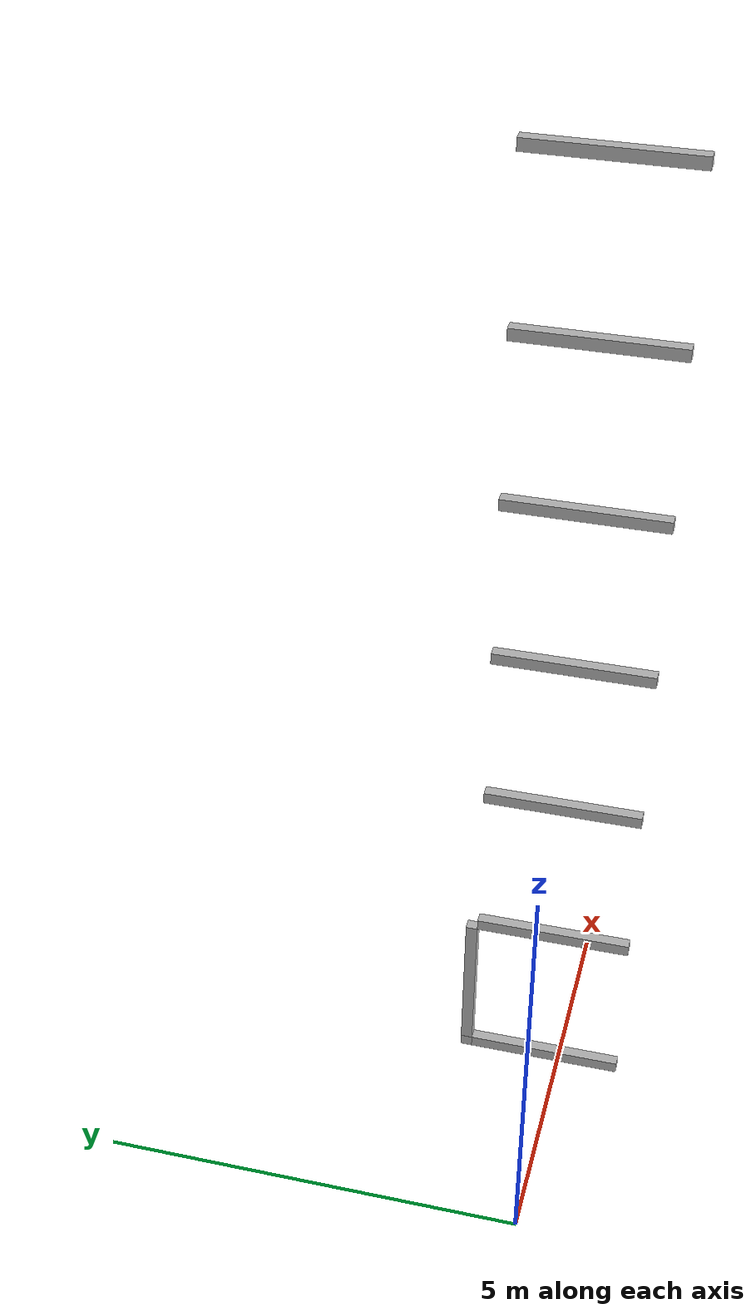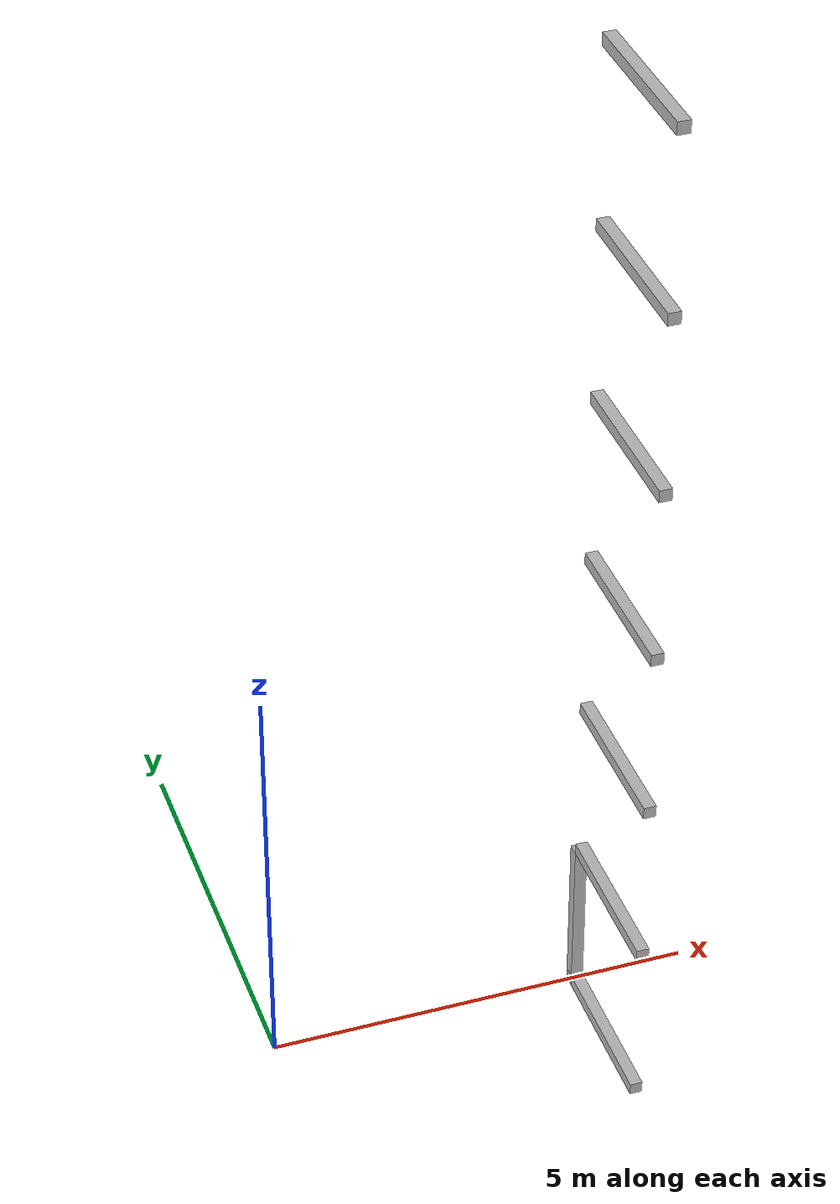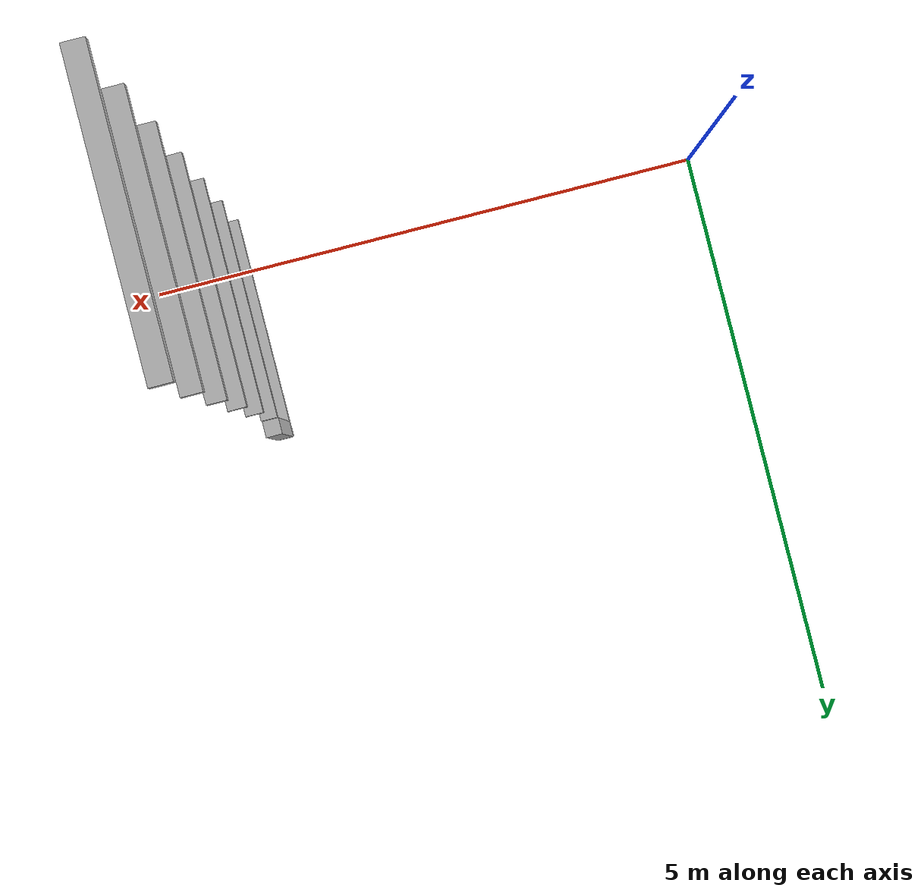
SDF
<sdf version="1.7">
 <world name="default">
  <model name="orthogonal_747_2.000.15_TS">
   <static>1</static>
   <link name="y_link_0_2_5">
    <inertial>
     <mass>1</mass>
     <inertia>
      <ixx>0.166667</ixx>
      <ixy>0</ixy>
      <ixz>0</ixz>
      <iyy>0.166667</iyy>
      <iyz>0</iyz>
      <izz>0.166667</izz>
     </inertia>
    </inertial>
    <pose>10.75 5.375 1.075 0 -0 0</pose>
    <visual name="visual_0">
     <laser_retro>435</laser_retro>
     <geometry><box><size>0.15 1e-06 0.15</size></box></geometry>
     <material>
      <script><name>Gazebo/Grey</name><uri>file://media/materials/scripts/gazebo.material</uri></script>
      <shader type="pixel"><normal_map>__default__</normal_map></shader>
      <ambient>0.678 0.498 0.659 1</ambient>
      <diffuse>0.7 0.7 0.7 1</diffuse>
      <specular>0.01 0.01 0.01 1</specular>
      <emissive>0 0 0 1</emissive>
     </material>
     <pose>0 -1 0 0 -0 0</pose>
     <transparency>1</transparency>
    </visual>
    <visual name="visual_1">
     <laser_retro>436</laser_retro>
     <geometry><box><size>0.15 1e-06 0.15</size></box></geometry>
     <material>
      <script><name>Gazebo/Grey</name><uri>file://media/materials/scripts/gazebo.material</uri></script>
      <shader type="pixel"><normal_map>__default__</normal_map></shader>
      <ambient>0.447 0.624 0.812 1</ambient>
      <diffuse>0.7 0.7 0.7 1</diffuse>
      <specular>0.01 0.01 0.01 1</specular>
      <emissive>0 0 0 1</emissive>
     </material>
     <pose>0 1 0 0 -0 0</pose>
     <transparency>1</transparency>
    </visual>
    <visual name="visual_2">
     <laser_retro>437</laser_retro>
     <geometry><box><size>0.15 2 1e-06</size></box></geometry>
     <material>
      <script><name>Gazebo/Grey</name><uri>file://media/materials/scripts/gazebo.material</uri></script>
      <shader type="pixel"><normal_map>__default__</normal_map></shader>
      <ambient>0.988 0.686 0.243 1</ambient>
      <diffuse>0.7 0.7 0.7 1</diffuse>
      <specular>0.01 0.01 0.01 1</specular>
      <emissive>0 0 0 1</emissive>
     </material>
     <pose>0 0 -0.075 0 -0 0</pose>
     <transparency>1</transparency>
    </visual>
    <visual name="visual_3">
     <laser_retro>438</laser_retro>
     <geometry><box><size>1e-06 2 0.15</size></box></geometry>
     <material>
      <script><name>Gazebo/Grey</name><uri>file://media/materials/scripts/gazebo.material</uri></script>
      <shader type="pixel"><normal_map>__default__</normal_map></shader>
      <ambient>0.988 0.914 0.31 1</ambient>
      <diffuse>0.7 0.7 0.7 1</diffuse>
      <specular>0.01 0.01 0.01 1</specular>
      <emissive>0 0 0 1</emissive>
     </material>
     <pose>0.075 0 0 0 -0 0</pose>
     <transparency>1</transparency>
    </visual>
    <visual name="visual_4">
     <laser_retro>439</laser_retro>
     <geometry><box><size>0.15 2 1e-06</size></box></geometry>
     <material>
      <script><name>Gazebo/Grey</name><uri>file://media/materials/scripts/gazebo.material</uri></script>
      <shader type="pixel"><normal_map>__default__</normal_map></shader>
      <ambient>0.937 0.161 0.161 1</ambient>
      <diffuse>0.7 0.7 0.7 1</diffuse>
      <specular>0.01 0.01 0.01 1</specular>
      <emissive>0 0 0 1</emissive>
     </material>
     <pose>0 0 0.075 0 -0 0</pose>
     <transparency>1</transparency>
    </visual>
    <visual name="visual_5">
     <laser_retro>440</laser_retro>
     <geometry><box><size>1e-06 2 0.15</size></box></geometry>
     <material>
      <script><name>Gazebo/Grey</name><uri>file://media/materials/scripts/gazebo.material</uri></script>
      <shader type="pixel"><normal_map>__default__</normal_map></shader>
      <ambient>0.541 0.886 0.204 1</ambient>
      <diffuse>0.7 0.7 0.7 1</diffuse>
      <specular>0.01 0.01 0.01 1</specular>
      <emissive>0 0 0 1</emissive>
     </material>
     <pose>-0.075 0 0 0 -0 0</pose>
     <transparency>1</transparency>
    </visual>
    <visual name="visual_texture">
     <geometry><box><size>0.149985 1.9998 0.149985</size></box></geometry>
     <material>
      <script>
       <uri>model://BASE_MODELS/simple_block_v2_textured/materials/scripts</uri>
       <uri>model://BASE_MODELS/simple_block_v2_textured/materials/textures</uri>
       <name>metal</name>
      </script>
     </material>
     <laser_retro>441</laser_retro>
    </visual>
    <collision name="collision">
     <geometry><box><size>0.15 2 0.15</size></box></geometry>
     <surface>
      <friction>
       <ode><mu>1</mu><mu2>1</mu2><fdir1>0 0 0</fdir1><slip1>0</slip1><slip2>0</slip2></ode>
       <torsional>
        <coefficient>1</coefficient>
        <patch_radius>0</patch_radius>
        <surface_radius>0</surface_radius>
        <use_patch_radius>1</use_patch_radius>
        <ode><slip>0</slip></ode>
       </torsional>
      </friction>
      <bounce><restitution_coefficient>0</restitution_coefficient><threshold>1e+06</threshold></bounce>
      <contact>
       <collide_without_contact>0</collide_without_contact>
       <collide_without_contact_bitmask>1</collide_without_contact_bitmask>
       <collide_bitmask>1</collide_bitmask>
       <ode>
        <soft_cfm>0</soft_cfm>
        <soft_erp>0.2</soft_erp>
        <kp>1e+13</kp>
        <kd>1</kd>
        <max_vel>0.01</max_vel>
        <min_depth>0</min_depth>
       </ode>
       <bullet>
        <split_impulse>1</split_impulse>
        <split_impulse_penetration_threshold>-0.01</split_impulse_penetration_threshold>
        <soft_cfm>0</soft_cfm>
        <soft_erp>0.2</soft_erp>
        <kp>1e+13</kp>
        <kd>1</kd>
       </bullet>
      </contact>
     </surface>
    </collision>
   </link>
   <link name="u_link_0_3_5">
    <inertial>
     <mass>1</mass>
     <inertia>
      <ixx>0.166667</ixx>
      <ixy>0</ixy>
      <ixz>0</ixz>
      <iyy>0.166667</iyy>
      <iyz>0</iyz>
      <izz>0.166667</izz>
     </inertia>
    </inertial>
    <pose>10.75 6.45 1.075 0 -0 0</pose>
    <visual name="visual_0">
     <laser_retro>603</laser_retro>
     <geometry><box><size>0.15 1e-06 0.15</size></box></geometry>
     <material>
      <script><name>Gazebo/Grey</name><uri>file://media/materials/scripts/gazebo.material</uri></script>
      <shader type="pixel"><normal_map>__default__</normal_map></shader>
      <ambient>0.678 0.498 0.659 1</ambient>
      <diffuse>0.7 0.7 0.7 1</diffuse>
      <specular>0.01 0.01 0.01 1</specular>
      <emissive>0 0 0 1</emissive>
     </material>
     <pose>0 -0.075 0 0 -0 0</pose>
     <transparency>1</transparency>
    </visual>
    <visual name="visual_1">
     <laser_retro>604</laser_retro>
     <geometry><box><size>0.15 1e-06 0.15</size></box></geometry>
     <material>
      <script><name>Gazebo/Grey</name><uri>file://media/materials/scripts/gazebo.material</uri></script>
      <shader type="pixel"><normal_map>__default__</normal_map></shader>
      <ambient>0.447 0.624 0.812 1</ambient>
      <diffuse>0.7 0.7 0.7 1</diffuse>
      <specular>0.01 0.01 0.01 1</specular>
      <emissive>0 0 0 1</emissive>
     </material>
     <pose>0 0.075 0 0 -0 0</pose>
     <transparency>1</transparency>
    </visual>
    <visual name="visual_2">
     <laser_retro>605</laser_retro>
     <geometry><box><size>0.15 0.15 1e-06</size></box></geometry>
     <material>
      <script><name>Gazebo/Grey</name><uri>file://media/materials/scripts/gazebo.material</uri></script>
      <shader type="pixel"><normal_map>__default__</normal_map></shader>
      <ambient>0.988 0.686 0.243 1</ambient>
      <diffuse>0.7 0.7 0.7 1</diffuse>
      <specular>0.01 0.01 0.01 1</specular>
      <emissive>0 0 0 1</emissive>
     </material>
     <pose>0 0 -0.075 0 -0 0</pose>
     <transparency>1</transparency>
    </visual>
    <visual name="visual_3">
     <laser_retro>606</laser_retro>
     <geometry><box><size>1e-06 0.15 0.15</size></box></geometry>
     <material>
      <script><name>Gazebo/Grey</name><uri>file://media/materials/scripts/gazebo.material</uri></script>
      <shader type="pixel"><normal_map>__default__</normal_map></shader>
      <ambient>0.988 0.914 0.31 1</ambient>
      <diffuse>0.7 0.7 0.7 1</diffuse>
      <specular>0.01 0.01 0.01 1</specular>
      <emissive>0 0 0 1</emissive>
     </material>
     <pose>0.075 0 0 0 -0 0</pose>
     <transparency>1</transparency>
    </visual>
    <visual name="visual_4">
     <laser_retro>607</laser_retro>
     <geometry><box><size>0.15 0.15 1e-06</size></box></geometry>
     <material>
      <script><name>Gazebo/Grey</name><uri>file://media/materials/scripts/gazebo.material</uri></script>
      <shader type="pixel"><normal_map>__default__</normal_map></shader>
      <ambient>0.937 0.161 0.161 1</ambient>
      <diffuse>0.7 0.7 0.7 1</diffuse>
      <specular>0.01 0.01 0.01 1</specular>
      <emissive>0 0 0 1</emissive>
     </material>
     <pose>0 0 0.075 0 -0 0</pose>
     <transparency>1</transparency>
    </visual>
    <visual name="visual_5">
     <laser_retro>608</laser_retro>
     <geometry><box><size>1e-06 0.15 0.15</size></box></geometry>
     <material>
      <script><name>Gazebo/Grey</name><uri>file://media/materials/scripts/gazebo.material</uri></script>
      <shader type="pixel"><normal_map>__default__</normal_map></shader>
      <ambient>0.541 0.886 0.204 1</ambient>
      <diffuse>0.7 0.7 0.7 1</diffuse>
      <specular>0.01 0.01 0.01 1</specular>
      <emissive>0 0 0 1</emissive>
     </material>
     <pose>-0.075 0 0 0 -0 0</pose>
     <transparency>1</transparency>
    </visual>
    <visual name="visual_texture">
     <geometry><box><size>0.149985 0.149985 0.149985</size></box></geometry>
     <material>
      <script>
       <uri>model://BASE_MODELS/simple_block_v2_textured/materials/scripts</uri>
       <uri>model://BASE_MODELS/simple_block_v2_textured/materials/textures</uri>
       <name>metal</name>
      </script>
     </material>
     <laser_retro>609</laser_retro>
    </visual>
    <collision name="collision">
     <geometry><box><size>0.15 0.15 0.15</size></box></geometry>
     <surface>
      <friction>
       <ode><mu>1</mu><mu2>1</mu2><fdir1>0 0 0</fdir1><slip1>0</slip1><slip2>0</slip2></ode>
       <torsional>
        <coefficient>1</coefficient>
        <patch_radius>0</patch_radius>
        <surface_radius>0</surface_radius>
        <use_patch_radius>1</use_patch_radius>
        <ode><slip>0</slip></ode>
       </torsional>
      </friction>
      <bounce><restitution_coefficient>0</restitution_coefficient><threshold>1e+06</threshold></bounce>
      <contact>
       <collide_without_contact>0</collide_without_contact>
       <collide_without_contact_bitmask>1</collide_without_contact_bitmask>
       <collide_bitmask>1</collide_bitmask>
       <ode>
        <soft_cfm>0</soft_cfm>
        <soft_erp>0.2</soft_erp>
        <kp>1e+13</kp>
        <kd>1</kd>
        <max_vel>0.01</max_vel>
        <min_depth>0</min_depth>
       </ode>
       <bullet>
        <split_impulse>1</split_impulse>
        <split_impulse_penetration_threshold>-0.01</split_impulse_penetration_threshold>
        <soft_cfm>0</soft_cfm>
        <soft_erp>0.2</soft_erp>
        <kp>1e+13</kp>
        <kd>1</kd>
       </bullet>
      </contact>
     </surface>
    </collision>
   </link>
   <link name="y_link_1_2_5">
    <inertial>
     <mass>1</mass>
     <inertia>
      <ixx>0.166667</ixx>
      <ixy>0</ixy>
      <ixz>0</ixz>
      <iyy>0.166667</iyy>
      <iyz>0</iyz>
      <izz>0.166667</izz>
     </inertia>
    </inertial>
    <pose>10.75 5.375 3.225 0 -0 0</pose>
    <visual name="visual_0">
     <laser_retro>1261</laser_retro>
     <geometry><box><size>0.15 1e-06 0.15</size></box></geometry>
     <material>
      <script><name>Gazebo/Grey</name><uri>file://media/materials/scripts/gazebo.material</uri></script>
      <shader type="pixel"><normal_map>__default__</normal_map></shader>
      <ambient>0.678 0.498 0.659 1</ambient>
      <diffuse>0.7 0.7 0.7 1</diffuse>
      <specular>0.01 0.01 0.01 1</specular>
      <emissive>0 0 0 1</emissive>
     </material>
     <pose>0 -1 0 0 -0 0</pose>
     <transparency>1</transparency>
    </visual>
    <visual name="visual_1">
     <laser_retro>1262</laser_retro>
     <geometry><box><size>0.15 1e-06 0.15</size></box></geometry>
     <material>
      <script><name>Gazebo/Grey</name><uri>file://media/materials/scripts/gazebo.material</uri></script>
      <shader type="pixel"><normal_map>__default__</normal_map></shader>
      <ambient>0.447 0.624 0.812 1</ambient>
      <diffuse>0.7 0.7 0.7 1</diffuse>
      <specular>0.01 0.01 0.01 1</specular>
      <emissive>0 0 0 1</emissive>
     </material>
     <pose>0 1 0 0 -0 0</pose>
     <transparency>1</transparency>
    </visual>
    <visual name="visual_2">
     <laser_retro>1263</laser_retro>
     <geometry><box><size>0.15 2 1e-06</size></box></geometry>
     <material>
      <script><name>Gazebo/Grey</name><uri>file://media/materials/scripts/gazebo.material</uri></script>
      <shader type="pixel"><normal_map>__default__</normal_map></shader>
      <ambient>0.988 0.686 0.243 1</ambient>
      <diffuse>0.7 0.7 0.7 1</diffuse>
      <specular>0.01 0.01 0.01 1</specular>
      <emissive>0 0 0 1</emissive>
     </material>
     <pose>0 0 -0.075 0 -0 0</pose>
     <transparency>1</transparency>
    </visual>
    <visual name="visual_3">
     <laser_retro>1264</laser_retro>
     <geometry><box><size>1e-06 2 0.15</size></box></geometry>
     <material>
      <script><name>Gazebo/Grey</name><uri>file://media/materials/scripts/gazebo.material</uri></script>
      <shader type="pixel"><normal_map>__default__</normal_map></shader>
      <ambient>0.988 0.914 0.31 1</ambient>
      <diffuse>0.7 0.7 0.7 1</diffuse>
      <specular>0.01 0.01 0.01 1</specular>
      <emissive>0 0 0 1</emissive>
     </material>
     <pose>0.075 0 0 0 -0 0</pose>
     <transparency>1</transparency>
    </visual>
    <visual name="visual_4">
     <laser_retro>1265</laser_retro>
     <geometry><box><size>0.15 2 1e-06</size></box></geometry>
     <material>
      <script><name>Gazebo/Grey</name><uri>file://media/materials/scripts/gazebo.material</uri></script>
      <shader type="pixel"><normal_map>__default__</normal_map></shader>
      <ambient>0.937 0.161 0.161 1</ambient>
      <diffuse>0.7 0.7 0.7 1</diffuse>
      <specular>0.01 0.01 0.01 1</specular>
      <emissive>0 0 0 1</emissive>
     </material>
     <pose>0 0 0.075 0 -0 0</pose>
     <transparency>1</transparency>
    </visual>
    <visual name="visual_5">
     <laser_retro>1266</laser_retro>
     <geometry><box><size>1e-06 2 0.15</size></box></geometry>
     <material>
      <script><name>Gazebo/Grey</name><uri>file://media/materials/scripts/gazebo.material</uri></script>
      <shader type="pixel"><normal_map>__default__</normal_map></shader>
      <ambient>0.541 0.886 0.204 1</ambient>
      <diffuse>0.7 0.7 0.7 1</diffuse>
      <specular>0.01 0.01 0.01 1</specular>
      <emissive>0 0 0 1</emissive>
     </material>
     <pose>-0.075 0 0 0 -0 0</pose>
     <transparency>1</transparency>
    </visual>
    <visual name="visual_texture">
     <geometry><box><size>0.149985 1.9998 0.149985</size></box></geometry>
     <material>
      <script>
       <uri>model://BASE_MODELS/simple_block_v2_textured/materials/scripts</uri>
       <uri>model://BASE_MODELS/simple_block_v2_textured/materials/textures</uri>
       <name>metal</name>
      </script>
     </material>
     <laser_retro>1267</laser_retro>
    </visual>
    <collision name="collision">
     <geometry><box><size>0.15 2 0.15</size></box></geometry>
     <surface>
      <friction>
       <ode><mu>1</mu><mu2>1</mu2><fdir1>0 0 0</fdir1><slip1>0</slip1><slip2>0</slip2></ode>
       <torsional>
        <coefficient>1</coefficient>
        <patch_radius>0</patch_radius>
        <surface_radius>0</surface_radius>
        <use_patch_radius>1</use_patch_radius>
        <ode><slip>0</slip></ode>
       </torsional>
      </friction>
      <bounce><restitution_coefficient>0</restitution_coefficient><threshold>1e+06</threshold></bounce>
      <contact>
       <collide_without_contact>0</collide_without_contact>
       <collide_without_contact_bitmask>1</collide_without_contact_bitmask>
       <collide_bitmask>1</collide_bitmask>
       <ode>
        <soft_cfm>0</soft_cfm>
        <soft_erp>0.2</soft_erp>
        <kp>1e+13</kp>
        <kd>1</kd>
        <max_vel>0.01</max_vel>
        <min_depth>0</min_depth>
       </ode>
       <bullet>
        <split_impulse>1</split_impulse>
        <split_impulse_penetration_threshold>-0.01</split_impulse_penetration_threshold>
        <soft_cfm>0</soft_cfm>
        <soft_erp>0.2</soft_erp>
        <kp>1e+13</kp>
        <kd>1</kd>
       </bullet>
      </contact>
     </surface>
    </collision>
   </link>
   <link name="z_link_1_3_5">
    <inertial>
     <mass>1</mass>
     <inertia>
      <ixx>0.166667</ixx>
      <ixy>0</ixy>
      <ixz>0</ixz>
      <iyy>0.166667</iyy>
      <iyz>0</iyz>
      <izz>0.166667</izz>
     </inertia>
    </inertial>
    <pose>10.75 6.45 2.15 0 -0 0</pose>
    <visual name="visual_0">
     <laser_retro>1443</laser_retro>
     <geometry><box><size>0.15 1e-06 2</size></box></geometry>
     <material>
      <script><name>Gazebo/Grey</name><uri>file://media/materials/scripts/gazebo.material</uri></script>
      <shader type="pixel"><normal_map>__default__</normal_map></shader>
      <ambient>0.678 0.498 0.659 1</ambient>
      <diffuse>0.7 0.7 0.7 1</diffuse>
      <specular>0.01 0.01 0.01 1</specular>
      <emissive>0 0 0 1</emissive>
     </material>
     <pose>0 -0.075 0 0 -0 0</pose>
     <transparency>1</transparency>
    </visual>
    <visual name="visual_1">
     <laser_retro>1444</laser_retro>
     <geometry><box><size>0.15 1e-06 2</size></box></geometry>
     <material>
      <script><name>Gazebo/Grey</name><uri>file://media/materials/scripts/gazebo.material</uri></script>
      <shader type="pixel"><normal_map>__default__</normal_map></shader>
      <ambient>0.447 0.624 0.812 1</ambient>
      <diffuse>0.7 0.7 0.7 1</diffuse>
      <specular>0.01 0.01 0.01 1</specular>
      <emissive>0 0 0 1</emissive>
     </material>
     <pose>0 0.075 0 0 -0 0</pose>
     <transparency>1</transparency>
    </visual>
    <visual name="visual_2">
     <laser_retro>1445</laser_retro>
     <geometry><box><size>0.15 0.15 1e-06</size></box></geometry>
     <material>
      <script><name>Gazebo/Grey</name><uri>file://media/materials/scripts/gazebo.material</uri></script>
      <shader type="pixel"><normal_map>__default__</normal_map></shader>
      <ambient>0.988 0.686 0.243 1</ambient>
      <diffuse>0.7 0.7 0.7 1</diffuse>
      <specular>0.01 0.01 0.01 1</specular>
      <emissive>0 0 0 1</emissive>
     </material>
     <pose>0 0 -1 0 -0 0</pose>
     <transparency>1</transparency>
    </visual>
    <visual name="visual_3">
     <laser_retro>1446</laser_retro>
     <geometry><box><size>1e-06 0.15 2</size></box></geometry>
     <material>
      <script><name>Gazebo/Grey</name><uri>file://media/materials/scripts/gazebo.material</uri></script>
      <shader type="pixel"><normal_map>__default__</normal_map></shader>
      <ambient>0.988 0.914 0.31 1</ambient>
      <diffuse>0.7 0.7 0.7 1</diffuse>
      <specular>0.01 0.01 0.01 1</specular>
      <emissive>0 0 0 1</emissive>
     </material>
     <pose>0.075 0 0 0 -0 0</pose>
     <transparency>1</transparency>
    </visual>
    <visual name="visual_4">
     <laser_retro>1447</laser_retro>
     <geometry><box><size>0.15 0.15 1e-06</size></box></geometry>
     <material>
      <script><name>Gazebo/Grey</name><uri>file://media/materials/scripts/gazebo.material</uri></script>
      <shader type="pixel"><normal_map>__default__</normal_map></shader>
      <ambient>0.937 0.161 0.161 1</ambient>
      <diffuse>0.7 0.7 0.7 1</diffuse>
      <specular>0.01 0.01 0.01 1</specular>
      <emissive>0 0 0 1</emissive>
     </material>
     <pose>0 0 1 0 -0 0</pose>
     <transparency>1</transparency>
    </visual>
    <visual name="visual_5">
     <laser_retro>1448</laser_retro>
     <geometry><box><size>1e-06 0.15 2</size></box></geometry>
     <material>
      <script><name>Gazebo/Grey</name><uri>file://media/materials/scripts/gazebo.material</uri></script>
      <shader type="pixel"><normal_map>__default__</normal_map></shader>
      <ambient>0.541 0.886 0.204 1</ambient>
      <diffuse>0.7 0.7 0.7 1</diffuse>
      <specular>0.01 0.01 0.01 1</specular>
      <emissive>0 0 0 1</emissive>
     </material>
     <pose>-0.075 0 0 0 -0 0</pose>
     <transparency>1</transparency>
    </visual>
    <visual name="visual_texture">
     <geometry><box><size>0.149985 0.149985 1.9998</size></box></geometry>
     <material>
      <script>
       <uri>model://BASE_MODELS/simple_block_v2_textured/materials/scripts</uri>
       <uri>model://BASE_MODELS/simple_block_v2_textured/materials/textures</uri>
       <name>metal</name>
      </script>
     </material>
     <laser_retro>1449</laser_retro>
    </visual>
    <collision name="collision">
     <geometry><box><size>0.15 0.15 2</size></box></geometry>
     <surface>
      <friction>
       <ode><mu>1</mu><mu2>1</mu2><fdir1>0 0 0</fdir1><slip1>0</slip1><slip2>0</slip2></ode>
       <torsional>
        <coefficient>1</coefficient>
        <patch_radius>0</patch_radius>
        <surface_radius>0</surface_radius>
        <use_patch_radius>1</use_patch_radius>
        <ode><slip>0</slip></ode>
       </torsional>
      </friction>
      <bounce><restitution_coefficient>0</restitution_coefficient><threshold>1e+06</threshold></bounce>
      <contact>
       <collide_without_contact>0</collide_without_contact>
       <collide_without_contact_bitmask>1</collide_without_contact_bitmask>
       <collide_bitmask>1</collide_bitmask>
       <ode>
        <soft_cfm>0</soft_cfm>
        <soft_erp>0.2</soft_erp>
        <kp>1e+13</kp>
        <kd>1</kd>
        <max_vel>0.01</max_vel>
        <min_depth>0</min_depth>
       </ode>
       <bullet>
        <split_impulse>1</split_impulse>
        <split_impulse_penetration_threshold>-0.01</split_impulse_penetration_threshold>
        <soft_cfm>0</soft_cfm>
        <soft_erp>0.2</soft_erp>
        <kp>1e+13</kp>
        <kd>1</kd>
       </bullet>
      </contact>
     </surface>
    </collision>
   </link>
   <link name="y_link_2_2_5">
    <inertial>
     <mass>1</mass>
     <inertia>
      <ixx>0.166667</ixx>
      <ixy>0</ixy>
      <ixz>0</ixz>
      <iyy>0.166667</iyy>
      <iyz>0</iyz>
      <izz>0.166667</izz>
     </inertia>
    </inertial>
    <pose>10.75 5.375 5.375 0 -0 0</pose>
    <visual name="visual_0">
     <laser_retro>2164</laser_retro>
     <geometry><box><size>0.15 1e-06 0.15</size></box></geometry>
     <material>
      <script><name>Gazebo/Grey</name><uri>file://media/materials/scripts/gazebo.material</uri></script>
      <shader type="pixel"><normal_map>__default__</normal_map></shader>
      <ambient>0.678 0.498 0.659 1</ambient>
      <diffuse>0.7 0.7 0.7 1</diffuse>
      <specular>0.01 0.01 0.01 1</specular>
      <emissive>0 0 0 1</emissive>
     </material>
     <pose>0 -1 0 0 -0 0</pose>
     <transparency>1</transparency>
    </visual>
    <visual name="visual_1">
     <laser_retro>2165</laser_retro>
     <geometry><box><size>0.15 1e-06 0.15</size></box></geometry>
     <material>
      <script><name>Gazebo/Grey</name><uri>file://media/materials/scripts/gazebo.material</uri></script>
      <shader type="pixel"><normal_map>__default__</normal_map></shader>
      <ambient>0.447 0.624 0.812 1</ambient>
      <diffuse>0.7 0.7 0.7 1</diffuse>
      <specular>0.01 0.01 0.01 1</specular>
      <emissive>0 0 0 1</emissive>
     </material>
     <pose>0 1 0 0 -0 0</pose>
     <transparency>1</transparency>
    </visual>
    <visual name="visual_2">
     <laser_retro>2166</laser_retro>
     <geometry><box><size>0.15 2 1e-06</size></box></geometry>
     <material>
      <script><name>Gazebo/Grey</name><uri>file://media/materials/scripts/gazebo.material</uri></script>
      <shader type="pixel"><normal_map>__default__</normal_map></shader>
      <ambient>0.988 0.686 0.243 1</ambient>
      <diffuse>0.7 0.7 0.7 1</diffuse>
      <specular>0.01 0.01 0.01 1</specular>
      <emissive>0 0 0 1</emissive>
     </material>
     <pose>0 0 -0.075 0 -0 0</pose>
     <transparency>1</transparency>
    </visual>
    <visual name="visual_3">
     <laser_retro>2167</laser_retro>
     <geometry><box><size>1e-06 2 0.15</size></box></geometry>
     <material>
      <script><name>Gazebo/Grey</name><uri>file://media/materials/scripts/gazebo.material</uri></script>
      <shader type="pixel"><normal_map>__default__</normal_map></shader>
      <ambient>0.988 0.914 0.31 1</ambient>
      <diffuse>0.7 0.7 0.7 1</diffuse>
      <specular>0.01 0.01 0.01 1</specular>
      <emissive>0 0 0 1</emissive>
     </material>
     <pose>0.075 0 0 0 -0 0</pose>
     <transparency>1</transparency>
    </visual>
    <visual name="visual_4">
     <laser_retro>2168</laser_retro>
     <geometry><box><size>0.15 2 1e-06</size></box></geometry>
     <material>
      <script><name>Gazebo/Grey</name><uri>file://media/materials/scripts/gazebo.material</uri></script>
      <shader type="pixel"><normal_map>__default__</normal_map></shader>
      <ambient>0.937 0.161 0.161 1</ambient>
      <diffuse>0.7 0.7 0.7 1</diffuse>
      <specular>0.01 0.01 0.01 1</specular>
      <emissive>0 0 0 1</emissive>
     </material>
     <pose>0 0 0.075 0 -0 0</pose>
     <transparency>1</transparency>
    </visual>
    <visual name="visual_5">
     <laser_retro>2169</laser_retro>
     <geometry><box><size>1e-06 2 0.15</size></box></geometry>
     <material>
      <script><name>Gazebo/Grey</name><uri>file://media/materials/scripts/gazebo.material</uri></script>
      <shader type="pixel"><normal_map>__default__</normal_map></shader>
      <ambient>0.541 0.886 0.204 1</ambient>
      <diffuse>0.7 0.7 0.7 1</diffuse>
      <specular>0.01 0.01 0.01 1</specular>
      <emissive>0 0 0 1</emissive>
     </material>
     <pose>-0.075 0 0 0 -0 0</pose>
     <transparency>1</transparency>
    </visual>
    <visual name="visual_texture">
     <geometry><box><size>0.149985 1.9998 0.149985</size></box></geometry>
     <material>
      <script>
       <uri>model://BASE_MODELS/simple_block_v2_textured/materials/scripts</uri>
       <uri>model://BASE_MODELS/simple_block_v2_textured/materials/textures</uri>
       <name>metal</name>
      </script>
     </material>
     <laser_retro>2170</laser_retro>
    </visual>
    <collision name="collision">
     <geometry><box><size>0.15 2 0.15</size></box></geometry>
     <surface>
      <friction>
       <ode><mu>1</mu><mu2>1</mu2><fdir1>0 0 0</fdir1><slip1>0</slip1><slip2>0</slip2></ode>
       <torsional>
        <coefficient>1</coefficient>
        <patch_radius>0</patch_radius>
        <surface_radius>0</surface_radius>
        <use_patch_radius>1</use_patch_radius>
        <ode><slip>0</slip></ode>
       </torsional>
      </friction>
      <bounce><restitution_coefficient>0</restitution_coefficient><threshold>1e+06</threshold></bounce>
      <contact>
       <collide_without_contact>0</collide_without_contact>
       <collide_without_contact_bitmask>1</collide_without_contact_bitmask>
       <collide_bitmask>1</collide_bitmask>
       <ode>
        <soft_cfm>0</soft_cfm>
        <soft_erp>0.2</soft_erp>
        <kp>1e+13</kp>
        <kd>1</kd>
        <max_vel>0.01</max_vel>
        <min_depth>0</min_depth>
       </ode>
       <bullet>
        <split_impulse>1</split_impulse>
        <split_impulse_penetration_threshold>-0.01</split_impulse_penetration_threshold>
        <soft_cfm>0</soft_cfm>
        <soft_erp>0.2</soft_erp>
        <kp>1e+13</kp>
        <kd>1</kd>
       </bullet>
      </contact>
     </surface>
    </collision>
   </link>
   <link name="y_link_3_2_5">
    <inertial>
     <mass>1</mass>
     <inertia>
      <ixx>0.166667</ixx>
      <ixy>0</ixy>
      <ixz>0</ixz>
      <iyy>0.166667</iyy>
      <iyz>0</iyz>
      <izz>0.166667</izz>
     </inertia>
    </inertial>
    <pose>10.75 5.375 7.525 0 -0 0</pose>
    <visual name="visual_0">
     <laser_retro>3067</laser_retro>
     <geometry><box><size>0.15 1e-06 0.15</size></box></geometry>
     <material>
      <script><name>Gazebo/Grey</name><uri>file://media/materials/scripts/gazebo.material</uri></script>
      <shader type="pixel"><normal_map>__default__</normal_map></shader>
      <ambient>0.678 0.498 0.659 1</ambient>
      <diffuse>0.7 0.7 0.7 1</diffuse>
      <specular>0.01 0.01 0.01 1</specular>
      <emissive>0 0 0 1</emissive>
     </material>
     <pose>0 -1 0 0 -0 0</pose>
     <transparency>1</transparency>
    </visual>
    <visual name="visual_1">
     <laser_retro>3068</laser_retro>
     <geometry><box><size>0.15 1e-06 0.15</size></box></geometry>
     <material>
      <script><name>Gazebo/Grey</name><uri>file://media/materials/scripts/gazebo.material</uri></script>
      <shader type="pixel"><normal_map>__default__</normal_map></shader>
      <ambient>0.447 0.624 0.812 1</ambient>
      <diffuse>0.7 0.7 0.7 1</diffuse>
      <specular>0.01 0.01 0.01 1</specular>
      <emissive>0 0 0 1</emissive>
     </material>
     <pose>0 1 0 0 -0 0</pose>
     <transparency>1</transparency>
    </visual>
    <visual name="visual_2">
     <laser_retro>3069</laser_retro>
     <geometry><box><size>0.15 2 1e-06</size></box></geometry>
     <material>
      <script><name>Gazebo/Grey</name><uri>file://media/materials/scripts/gazebo.material</uri></script>
      <shader type="pixel"><normal_map>__default__</normal_map></shader>
      <ambient>0.988 0.686 0.243 1</ambient>
      <diffuse>0.7 0.7 0.7 1</diffuse>
      <specular>0.01 0.01 0.01 1</specular>
      <emissive>0 0 0 1</emissive>
     </material>
     <pose>0 0 -0.075 0 -0 0</pose>
     <transparency>1</transparency>
    </visual>
    <visual name="visual_3">
     <laser_retro>3070</laser_retro>
     <geometry><box><size>1e-06 2 0.15</size></box></geometry>
     <material>
      <script><name>Gazebo/Grey</name><uri>file://media/materials/scripts/gazebo.material</uri></script>
      <shader type="pixel"><normal_map>__default__</normal_map></shader>
      <ambient>0.988 0.914 0.31 1</ambient>
      <diffuse>0.7 0.7 0.7 1</diffuse>
      <specular>0.01 0.01 0.01 1</specular>
      <emissive>0 0 0 1</emissive>
     </material>
     <pose>0.075 0 0 0 -0 0</pose>
     <transparency>1</transparency>
    </visual>
    <visual name="visual_4">
     <laser_retro>3071</laser_retro>
     <geometry><box><size>0.15 2 1e-06</size></box></geometry>
     <material>
      <script><name>Gazebo/Grey</name><uri>file://media/materials/scripts/gazebo.material</uri></script>
      <shader type="pixel"><normal_map>__default__</normal_map></shader>
      <ambient>0.937 0.161 0.161 1</ambient>
      <diffuse>0.7 0.7 0.7 1</diffuse>
      <specular>0.01 0.01 0.01 1</specular>
      <emissive>0 0 0 1</emissive>
     </material>
     <pose>0 0 0.075 0 -0 0</pose>
     <transparency>1</transparency>
    </visual>
    <visual name="visual_5">
     <laser_retro>3072</laser_retro>
     <geometry><box><size>1e-06 2 0.15</size></box></geometry>
     <material>
      <script><name>Gazebo/Grey</name><uri>file://media/materials/scripts/gazebo.material</uri></script>
      <shader type="pixel"><normal_map>__default__</normal_map></shader>
      <ambient>0.541 0.886 0.204 1</ambient>
      <diffuse>0.7 0.7 0.7 1</diffuse>
      <specular>0.01 0.01 0.01 1</specular>
      <emissive>0 0 0 1</emissive>
     </material>
     <pose>-0.075 0 0 0 -0 0</pose>
     <transparency>1</transparency>
    </visual>
    <visual name="visual_texture">
     <geometry><box><size>0.149985 1.9998 0.149985</size></box></geometry>
     <material>
      <script>
       <uri>model://BASE_MODELS/simple_block_v2_textured/materials/scripts</uri>
       <uri>model://BASE_MODELS/simple_block_v2_textured/materials/textures</uri>
       <name>metal</name>
      </script>
     </material>
     <laser_retro>3073</laser_retro>
    </visual>
    <collision name="collision">
     <geometry><box><size>0.15 2 0.15</size></box></geometry>
     <surface>
      <friction>
       <ode><mu>1</mu><mu2>1</mu2><fdir1>0 0 0</fdir1><slip1>0</slip1><slip2>0</slip2></ode>
       <torsional>
        <coefficient>1</coefficient>
        <patch_radius>0</patch_radius>
        <surface_radius>0</surface_radius>
        <use_patch_radius>1</use_patch_radius>
        <ode><slip>0</slip></ode>
       </torsional>
      </friction>
      <bounce><restitution_coefficient>0</restitution_coefficient><threshold>1e+06</threshold></bounce>
      <contact>
       <collide_without_contact>0</collide_without_contact>
       <collide_without_contact_bitmask>1</collide_without_contact_bitmask>
       <collide_bitmask>1</collide_bitmask>
       <ode>
        <soft_cfm>0</soft_cfm>
        <soft_erp>0.2</soft_erp>
        <kp>1e+13</kp>
        <kd>1</kd>
        <max_vel>0.01</max_vel>
        <min_depth>0</min_depth>
       </ode>
       <bullet>
        <split_impulse>1</split_impulse>
        <split_impulse_penetration_threshold>-0.01</split_impulse_penetration_threshold>
        <soft_cfm>0</soft_cfm>
        <soft_erp>0.2</soft_erp>
        <kp>1e+13</kp>
        <kd>1</kd>
       </bullet>
      </contact>
     </surface>
    </collision>
   </link>
   <link name="y_link_4_2_5">
    <inertial>
     <mass>1</mass>
     <inertia>
      <ixx>0.166667</ixx>
      <ixy>0</ixy>
      <ixz>0</ixz>
      <iyy>0.166667</iyy>
      <iyz>0</iyz>
      <izz>0.166667</izz>
     </inertia>
    </inertial>
    <pose>10.75 5.375 9.675 0 -0 0</pose>
    <visual name="visual_0">
     <laser_retro>3970</laser_retro>
     <geometry><box><size>0.15 1e-06 0.15</size></box></geometry>
     <material>
      <script><name>Gazebo/Grey</name><uri>file://media/materials/scripts/gazebo.material</uri></script>
      <shader type="pixel"><normal_map>__default__</normal_map></shader>
      <ambient>0.678 0.498 0.659 1</ambient>
      <diffuse>0.7 0.7 0.7 1</diffuse>
      <specular>0.01 0.01 0.01 1</specular>
      <emissive>0 0 0 1</emissive>
     </material>
     <pose>0 -1 0 0 -0 0</pose>
     <transparency>1</transparency>
    </visual>
    <visual name="visual_1">
     <laser_retro>3971</laser_retro>
     <geometry><box><size>0.15 1e-06 0.15</size></box></geometry>
     <material>
      <script><name>Gazebo/Grey</name><uri>file://media/materials/scripts/gazebo.material</uri></script>
      <shader type="pixel"><normal_map>__default__</normal_map></shader>
      <ambient>0.447 0.624 0.812 1</ambient>
      <diffuse>0.7 0.7 0.7 1</diffuse>
      <specular>0.01 0.01 0.01 1</specular>
      <emissive>0 0 0 1</emissive>
     </material>
     <pose>0 1 0 0 -0 0</pose>
     <transparency>1</transparency>
    </visual>
    <visual name="visual_2">
     <laser_retro>3972</laser_retro>
     <geometry><box><size>0.15 2 1e-06</size></box></geometry>
     <material>
      <script><name>Gazebo/Grey</name><uri>file://media/materials/scripts/gazebo.material</uri></script>
      <shader type="pixel"><normal_map>__default__</normal_map></shader>
      <ambient>0.988 0.686 0.243 1</ambient>
      <diffuse>0.7 0.7 0.7 1</diffuse>
      <specular>0.01 0.01 0.01 1</specular>
      <emissive>0 0 0 1</emissive>
     </material>
     <pose>0 0 -0.075 0 -0 0</pose>
     <transparency>1</transparency>
    </visual>
    <visual name="visual_3">
     <laser_retro>3973</laser_retro>
     <geometry><box><size>1e-06 2 0.15</size></box></geometry>
     <material>
      <script><name>Gazebo/Grey</name><uri>file://media/materials/scripts/gazebo.material</uri></script>
      <shader type="pixel"><normal_map>__default__</normal_map></shader>
      <ambient>0.988 0.914 0.31 1</ambient>
      <diffuse>0.7 0.7 0.7 1</diffuse>
      <specular>0.01 0.01 0.01 1</specular>
      <emissive>0 0 0 1</emissive>
     </material>
     <pose>0.075 0 0 0 -0 0</pose>
     <transparency>1</transparency>
    </visual>
    <visual name="visual_4">
     <laser_retro>3974</laser_retro>
     <geometry><box><size>0.15 2 1e-06</size></box></geometry>
     <material>
      <script><name>Gazebo/Grey</name><uri>file://media/materials/scripts/gazebo.material</uri></script>
      <shader type="pixel"><normal_map>__default__</normal_map></shader>
      <ambient>0.937 0.161 0.161 1</ambient>
      <diffuse>0.7 0.7 0.7 1</diffuse>
      <specular>0.01 0.01 0.01 1</specular>
      <emissive>0 0 0 1</emissive>
     </material>
     <pose>0 0 0.075 0 -0 0</pose>
     <transparency>1</transparency>
    </visual>
    <visual name="visual_5">
     <laser_retro>3975</laser_retro>
     <geometry><box><size>1e-06 2 0.15</size></box></geometry>
     <material>
      <script><name>Gazebo/Grey</name><uri>file://media/materials/scripts/gazebo.material</uri></script>
      <shader type="pixel"><normal_map>__default__</normal_map></shader>
      <ambient>0.541 0.886 0.204 1</ambient>
      <diffuse>0.7 0.7 0.7 1</diffuse>
      <specular>0.01 0.01 0.01 1</specular>
      <emissive>0 0 0 1</emissive>
     </material>
     <pose>-0.075 0 0 0 -0 0</pose>
     <transparency>1</transparency>
    </visual>
    <visual name="visual_texture">
     <geometry><box><size>0.149985 1.9998 0.149985</size></box></geometry>
     <material>
      <script>
       <uri>model://BASE_MODELS/simple_block_v2_textured/materials/scripts</uri>
       <uri>model://BASE_MODELS/simple_block_v2_textured/materials/textures</uri>
       <name>metal</name>
      </script>
     </material>
     <laser_retro>3976</laser_retro>
    </visual>
    <collision name="collision">
     <geometry><box><size>0.15 2 0.15</size></box></geometry>
     <surface>
      <friction>
       <ode><mu>1</mu><mu2>1</mu2><fdir1>0 0 0</fdir1><slip1>0</slip1><slip2>0</slip2></ode>
       <torsional>
        <coefficient>1</coefficient>
        <patch_radius>0</patch_radius>
        <surface_radius>0</surface_radius>
        <use_patch_radius>1</use_patch_radius>
        <ode><slip>0</slip></ode>
       </torsional>
      </friction>
      <bounce><restitution_coefficient>0</restitution_coefficient><threshold>1e+06</threshold></bounce>
      <contact>
       <collide_without_contact>0</collide_without_contact>
       <collide_without_contact_bitmask>1</collide_without_contact_bitmask>
       <collide_bitmask>1</collide_bitmask>
       <ode>
        <soft_cfm>0</soft_cfm>
        <soft_erp>0.2</soft_erp>
        <kp>1e+13</kp>
        <kd>1</kd>
        <max_vel>0.01</max_vel>
        <min_depth>0</min_depth>
       </ode>
       <bullet>
        <split_impulse>1</split_impulse>
        <split_impulse_penetration_threshold>-0.01</split_impulse_penetration_threshold>
        <soft_cfm>0</soft_cfm>
        <soft_erp>0.2</soft_erp>
        <kp>1e+13</kp>
        <kd>1</kd>
       </bullet>
      </contact>
     </surface>
    </collision>
   </link>
   <link name="y_link_5_2_5">
    <inertial>
     <mass>1</mass>
     <inertia>
      <ixx>0.166667</ixx>
      <ixy>0</ixy>
      <ixz>0</ixz>
      <iyy>0.166667</iyy>
      <iyz>0</iyz>
      <izz>0.166667</izz>
     </inertia>
    </inertial>
    <pose>10.75 5.375 11.825 0 -0 0</pose>
    <visual name="visual_0">
     <laser_retro>4873</laser_retro>
     <geometry><box><size>0.15 1e-06 0.15</size></box></geometry>
     <material>
      <script><name>Gazebo/Grey</name><uri>file://media/materials/scripts/gazebo.material</uri></script>
      <shader type="pixel"><normal_map>__default__</normal_map></shader>
      <ambient>0.678 0.498 0.659 1</ambient>
      <diffuse>0.7 0.7 0.7 1</diffuse>
      <specular>0.01 0.01 0.01 1</specular>
      <emissive>0 0 0 1</emissive>
     </material>
     <pose>0 -1 0 0 -0 0</pose>
     <transparency>1</transparency>
    </visual>
    <visual name="visual_1">
     <laser_retro>4874</laser_retro>
     <geometry><box><size>0.15 1e-06 0.15</size></box></geometry>
     <material>
      <script><name>Gazebo/Grey</name><uri>file://media/materials/scripts/gazebo.material</uri></script>
      <shader type="pixel"><normal_map>__default__</normal_map></shader>
      <ambient>0.447 0.624 0.812 1</ambient>
      <diffuse>0.7 0.7 0.7 1</diffuse>
      <specular>0.01 0.01 0.01 1</specular>
      <emissive>0 0 0 1</emissive>
     </material>
     <pose>0 1 0 0 -0 0</pose>
     <transparency>1</transparency>
    </visual>
    <visual name="visual_2">
     <laser_retro>4875</laser_retro>
     <geometry><box><size>0.15 2 1e-06</size></box></geometry>
     <material>
      <script><name>Gazebo/Grey</name><uri>file://media/materials/scripts/gazebo.material</uri></script>
      <shader type="pixel"><normal_map>__default__</normal_map></shader>
      <ambient>0.988 0.686 0.243 1</ambient>
      <diffuse>0.7 0.7 0.7 1</diffuse>
      <specular>0.01 0.01 0.01 1</specular>
      <emissive>0 0 0 1</emissive>
     </material>
     <pose>0 0 -0.075 0 -0 0</pose>
     <transparency>1</transparency>
    </visual>
    <visual name="visual_3">
     <laser_retro>4876</laser_retro>
     <geometry><box><size>1e-06 2 0.15</size></box></geometry>
     <material>
      <script><name>Gazebo/Grey</name><uri>file://media/materials/scripts/gazebo.material</uri></script>
      <shader type="pixel"><normal_map>__default__</normal_map></shader>
      <ambient>0.988 0.914 0.31 1</ambient>
      <diffuse>0.7 0.7 0.7 1</diffuse>
      <specular>0.01 0.01 0.01 1</specular>
      <emissive>0 0 0 1</emissive>
     </material>
     <pose>0.075 0 0 0 -0 0</pose>
     <transparency>1</transparency>
    </visual>
    <visual name="visual_4">
     <laser_retro>4877</laser_retro>
     <geometry><box><size>0.15 2 1e-06</size></box></geometry>
     <material>
      <script><name>Gazebo/Grey</name><uri>file://media/materials/scripts/gazebo.material</uri></script>
      <shader type="pixel"><normal_map>__default__</normal_map></shader>
      <ambient>0.937 0.161 0.161 1</ambient>
      <diffuse>0.7 0.7 0.7 1</diffuse>
      <specular>0.01 0.01 0.01 1</specular>
      <emissive>0 0 0 1</emissive>
     </material>
     <pose>0 0 0.075 0 -0 0</pose>
     <transparency>1</transparency>
    </visual>
    <visual name="visual_5">
     <laser_retro>4878</laser_retro>
     <geometry><box><size>1e-06 2 0.15</size></box></geometry>
     <material>
      <script><name>Gazebo/Grey</name><uri>file://media/materials/scripts/gazebo.material</uri></script>
      <shader type="pixel"><normal_map>__default__</normal_map></shader>
      <ambient>0.541 0.886 0.204 1</ambient>
      <diffuse>0.7 0.7 0.7 1</diffuse>
      <specular>0.01 0.01 0.01 1</specular>
      <emissive>0 0 0 1</emissive>
     </material>
     <pose>-0.075 0 0 0 -0 0</pose>
     <transparency>1</transparency>
    </visual>
    <visual name="visual_texture">
     <geometry><box><size>0.149985 1.9998 0.149985</size></box></geometry>
     <material>
      <script>
       <uri>model://BASE_MODELS/simple_block_v2_textured/materials/scripts</uri>
       <uri>model://BASE_MODELS/simple_block_v2_textured/materials/textures</uri>
       <name>metal</name>
      </script>
     </material>
     <laser_retro>4879</laser_retro>
    </visual>
    <collision name="collision">
     <geometry><box><size>0.15 2 0.15</size></box></geometry>
     <surface>
      <friction>
       <ode><mu>1</mu><mu2>1</mu2><fdir1>0 0 0</fdir1><slip1>0</slip1><slip2>0</slip2></ode>
       <torsional>
        <coefficient>1</coefficient>
        <patch_radius>0</patch_radius>
        <surface_radius>0</surface_radius>
        <use_patch_radius>1</use_patch_radius>
        <ode><slip>0</slip></ode>
       </torsional>
      </friction>
      <bounce><restitution_coefficient>0</restitution_coefficient><threshold>1e+06</threshold></bounce>
      <contact>
       <collide_without_contact>0</collide_without_contact>
       <collide_without_contact_bitmask>1</collide_without_contact_bitmask>
       <collide_bitmask>1</collide_bitmask>
       <ode>
        <soft_cfm>0</soft_cfm>
        <soft_erp>0.2</soft_erp>
        <kp>1e+13</kp>
        <kd>1</kd>
        <max_vel>0.01</max_vel>
        <min_depth>0</min_depth>
       </ode>
       <bullet>
        <split_impulse>1</split_impulse>
        <split_impulse_penetration_threshold>-0.01</split_impulse_penetration_threshold>
        <soft_cfm>0</soft_cfm>
        <soft_erp>0.2</soft_erp>
        <kp>1e+13</kp>
        <kd>1</kd>
       </bullet>
      </contact>
     </surface>
    </collision>
   </link>
   <link name="y_link_6_2_5">
    <inertial>
     <mass>1</mass>
     <inertia>
      <ixx>0.166667</ixx>
      <ixy>0</ixy>
      <ixz>0</ixz>
      <iyy>0.166667</iyy>
      <iyz>0</iyz>
      <izz>0.166667</izz>
     </inertia>
    </inertial>
    <pose>10.75 5.375 13.975 0 -0 0</pose>
    <visual name="visual_0">
     <laser_retro>5846</laser_retro>
     <geometry><box><size>0.15 1e-06 0.15</size></box></geometry>
     <material>
      <script><name>Gazebo/Grey</name><uri>file://media/materials/scripts/gazebo.material</uri></script>
      <shader type="pixel"><normal_map>__default__</normal_map></shader>
      <ambient>0.678 0.498 0.659 1</ambient>
      <diffuse>0.7 0.7 0.7 1</diffuse>
      <specular>0.01 0.01 0.01 1</specular>
      <emissive>0 0 0 1</emissive>
     </material>
     <pose>0 -1 0 0 -0 0</pose>
     <transparency>1</transparency>
    </visual>
    <visual name="visual_1">
     <laser_retro>5847</laser_retro>
     <geometry><box><size>0.15 1e-06 0.15</size></box></geometry>
     <material>
      <script><name>Gazebo/Grey</name><uri>file://media/materials/scripts/gazebo.material</uri></script>
      <shader type="pixel"><normal_map>__default__</normal_map></shader>
      <ambient>0.447 0.624 0.812 1</ambient>
      <diffuse>0.7 0.7 0.7 1</diffuse>
      <specular>0.01 0.01 0.01 1</specular>
      <emissive>0 0 0 1</emissive>
     </material>
     <pose>0 1 0 0 -0 0</pose>
     <transparency>1</transparency>
    </visual>
    <visual name="visual_2">
     <laser_retro>5848</laser_retro>
     <geometry><box><size>0.15 2 1e-06</size></box></geometry>
     <material>
      <script><name>Gazebo/Grey</name><uri>file://media/materials/scripts/gazebo.material</uri></script>
      <shader type="pixel"><normal_map>__default__</normal_map></shader>
      <ambient>0.988 0.686 0.243 1</ambient>
      <diffuse>0.7 0.7 0.7 1</diffuse>
      <specular>0.01 0.01 0.01 1</specular>
      <emissive>0 0 0 1</emissive>
     </material>
     <pose>0 0 -0.075 0 -0 0</pose>
     <transparency>1</transparency>
    </visual>
    <visual name="visual_3">
     <laser_retro>5849</laser_retro>
     <geometry><box><size>1e-06 2 0.15</size></box></geometry>
     <material>
      <script><name>Gazebo/Grey</name><uri>file://media/materials/scripts/gazebo.material</uri></script>
      <shader type="pixel"><normal_map>__default__</normal_map></shader>
      <ambient>0.988 0.914 0.31 1</ambient>
      <diffuse>0.7 0.7 0.7 1</diffuse>
      <specular>0.01 0.01 0.01 1</specular>
      <emissive>0 0 0 1</emissive>
     </material>
     <pose>0.075 0 0 0 -0 0</pose>
     <transparency>1</transparency>
    </visual>
    <visual name="visual_4">
     <laser_retro>5850</laser_retro>
     <geometry><box><size>0.15 2 1e-06</size></box></geometry>
     <material>
      <script><name>Gazebo/Grey</name><uri>file://media/materials/scripts/gazebo.material</uri></script>
      <shader type="pixel"><normal_map>__default__</normal_map></shader>
      <ambient>0.937 0.161 0.161 1</ambient>
      <diffuse>0.7 0.7 0.7 1</diffuse>
      <specular>0.01 0.01 0.01 1</specular>
      <emissive>0 0 0 1</emissive>
     </material>
     <pose>0 0 0.075 0 -0 0</pose>
     <transparency>1</transparency>
    </visual>
    <visual name="visual_5">
     <laser_retro>5851</laser_retro>
     <geometry><box><size>1e-06 2 0.15</size></box></geometry>
     <material>
      <script><name>Gazebo/Grey</name><uri>file://media/materials/scripts/gazebo.material</uri></script>
      <shader type="pixel"><normal_map>__default__</normal_map></shader>
      <ambient>0.541 0.886 0.204 1</ambient>
      <diffuse>0.7 0.7 0.7 1</diffuse>
      <specular>0.01 0.01 0.01 1</specular>
      <emissive>0 0 0 1</emissive>
     </material>
     <pose>-0.075 0 0 0 -0 0</pose>
     <transparency>1</transparency>
    </visual>
    <visual name="visual_texture">
     <geometry><box><size>0.149985 1.9998 0.149985</size></box></geometry>
     <material>
      <script>
       <uri>model://BASE_MODELS/simple_block_v2_textured/materials/scripts</uri>
       <uri>model://BASE_MODELS/simple_block_v2_textured/materials/textures</uri>
       <name>metal</name>
      </script>
     </material>
     <laser_retro>5852</laser_retro>
    </visual>
    <collision name="collision">
     <geometry><box><size>0.15 2 0.15</size></box></geometry>
     <surface>
      <friction>
       <ode><mu>1</mu><mu2>1</mu2><fdir1>0 0 0</fdir1><slip1>0</slip1><slip2>0</slip2></ode>
       <torsional>
        <coefficient>1</coefficient>
        <patch_radius>0</patch_radius>
        <surface_radius>0</surface_radius>
        <use_patch_radius>1</use_patch_radius>
        <ode><slip>0</slip></ode>
       </torsional>
      </friction>
      <bounce><restitution_coefficient>0</restitution_coefficient><threshold>1e+06</threshold></bounce>
      <contact>
       <collide_without_contact>0</collide_without_contact>
       <collide_without_contact_bitmask>1</collide_without_contact_bitmask>
       <collide_bitmask>1</collide_bitmask>
       <ode>
        <soft_cfm>0</soft_cfm>
        <soft_erp>0.2</soft_erp>
        <kp>1e+13</kp>
        <kd>1</kd>
        <max_vel>0.01</max_vel>
        <min_depth>0</min_depth>
       </ode>
       <bullet>
        <split_impulse>1</split_impulse>
        <split_impulse_penetration_threshold>-0.01</split_impulse_penetration_threshold>
        <soft_cfm>0</soft_cfm>
        <soft_erp>0.2</soft_erp>
        <kp>1e+13</kp>
        <kd>1</kd>
       </bullet>
      </contact>
     </surface>
    </collision>
   </link>
   <pose>-6.47624 -5 -2.5 0 -0 0</pose>
  </model>
 </world>
</sdf>
